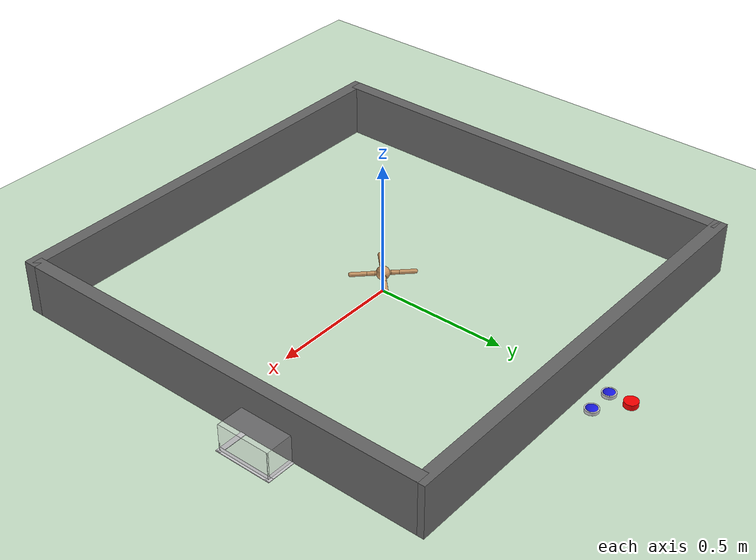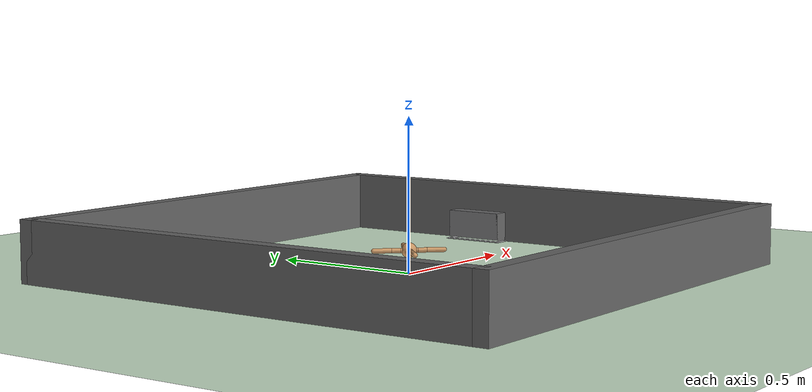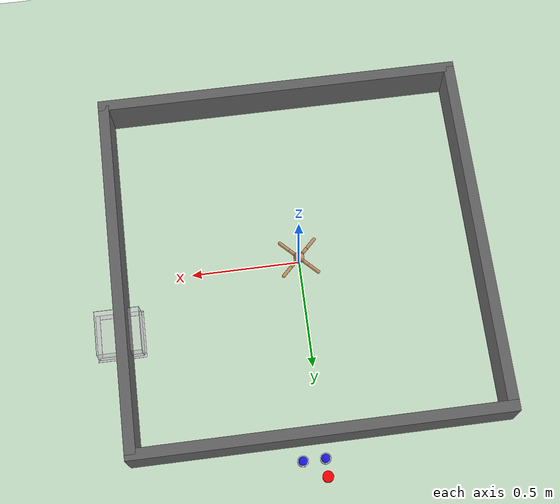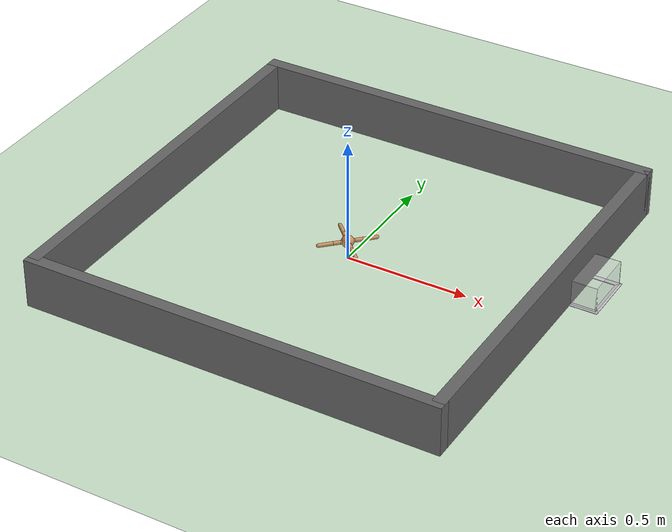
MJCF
<mujoco model="ant">
    <compiler angle="degree" coordinate="local" inertiafromgeom="true" texturedir="textures"/>
    <option integrator="RK4" timestep="0.02"/>
    <custom>
        <numeric data="0.0 0.0 0.055 0.1 0.0 0.0 0.0 0.0 0.1 0.0 -0.1 0.0 -0.1 0.0 0.1" name="init_qpos"/>
    </custom>
    <default>
        <joint armature="1" damping="1" limited="true"/>
        <geom conaffinity="1" condim="3" density="5.0" friction="1 0.5 0.5" margin="0.01" rgba="0.8 0.6 0.4 1"/>
    </default>
    <asset>
        <texture type="skybox" file="sky.png" gridsize="3 4" gridlayout=".U..LFRB.D.."/>
        <texture builtin="flat" height="1278" mark="cross" markrgb="1 1 1" name="texgeom" random="0.01"
                 rgb1="0.8 0.6 0.4" rgb2="0.8 0.6 0.4" type="cube" width="127"/>
        <texture builtin="flat" height="100" name="texplane" rgb1="0.0 0.25 0.5" type="2d" width="100"/>
        <material name="MatPlane" shininess="1" specular="1" texrepeat="60 60" texture="texplane"/>
        <material name="geom" texture="texgeom" texuniform="true"/>
    </asset>
    <worldbody>
        <include file="subgoal_viz.xml"/>
        <light cutoff="100" diffuse="1 1 1" dir="-0 0 -1.3" directional="true" exponent="1" pos="0 0 1.3"
               specular=".1 .1 .1"/>
        <geom conaffinity="1" condim="3" material="MatPlane" name="floor" pos="0 0 0" rgba="0.8 0.9 0.8 1"
              size="40 40 40" type="plane"/>
        <body name="torso" pos="0 0 0.075">
            <camera name="track" mode="trackcom" pos="0 -3 0.3" xyaxes="1 0 0 0 0 1"/>
            <geom name="torso_geom" pos="0 0 0" size="0.025" type="sphere"/>
            <joint armature="0" damping="0" limited="false" margin="0.01" name="root" pos="0 0 0" type="free"/>
            <body name="front_left_leg" pos="0 0 0">
                <geom fromto="0.0 0.0 0.0 0.02 0.02 0.0" name="aux_1_geom" size="0.008" type="capsule"/>
                <body name="up_leg1" pos="0.02 0.02 0">
                    <joint axis="0 0 1" name="hip_1" pos="0.0 0.0 0.0" range="-30 30" type="hinge"/>
                    <geom fromto="0.0 0.0 0.0 0.02 0.02 0.0" name="left_leg_geom" size="0.008" type="capsule"/>
                    <body name="low_leg1" pos="0.02 0.02 0">
                        <joint axis="-1 1 0" name="ankle_1" pos="0.0 0.0 0.0" range="30 70" type="hinge"/>
                        <geom fromto="0.0 0.0 0.0 0.04 0.04 0.0" name="left_ankle_geom" size="0.008" type="capsule"/>
                    </body>
                </body>
            </body>
            <body name="front_right_leg" pos="0 0 0">
                <geom fromto="0.0 0.0 0.0 -0.02 0.02 0.0" name="aux_2_geom" size="0.008" type="capsule"/>
                <body name="up_leg2" pos="-0.02 0.02 0">
                    <joint axis="0 0 1" name="hip_2" pos="0.0 0.0 0.0" range="-30 30" type="hinge"/>
                    <geom fromto="0.0 0.0 0.0 -0.02 0.02 0.0" name="right_leg_geom" size="0.008" type="capsule"/>
                    <body name="low_leg2" pos="-0.02 0.02 0">
                        <joint axis="1 1 0" name="ankle_2" pos="0.0 0.0 0.0" range="-70 -30" type="hinge"/>
                        <geom fromto="0.0 0.0 0.0 -0.04 0.04 0.0" name="right_ankle_geom" size="0.008" type="capsule"/>
                    </body>
                </body>
            </body>
            <body name="left_back_leg" pos="0 0 0">
                <geom fromto="0.0 0.0 0.0 -0.02 -0.02 0.0" name="aux_3_geom" size="0.008" type="capsule"/>
                <body name="up_leg3" pos="-0.02 -0.02 0">
                    <joint axis="0 0 1" name="hip_3" pos="0.0 0.0 0.0" range="-30 30" type="hinge"/>
                    <geom fromto="0.0 0.0 0.0 -0.02 -0.02 0.0" name="left_back_leg_geom" size="0.008" type="capsule"/>
                    <body name="low_leg3" pos="-0.02 -0.02 0">
                        <joint axis="-1 1 0" name="ankle_3" pos="0.0 0.0 0.0" range="-70 -30" type="hinge"/>
                        <geom fromto="0.0 0.0 0.0 -0.04 -0.04 0.0" name="left_back_ankle_geom" size="0.008"
                              type="capsule"/>
                    </body>
                </body>
            </body>
            <body name="right_back_leg" pos="0 0 0">
                <geom fromto="0.0 0.0 0.0 0.02 -0.02 0.0" name="aux_4_geom" size="0.008" type="capsule"/>
                <body name="up_leg4" pos="0.02 -0.02 0">
                    <joint axis="0 0 1" name="hip_4" pos="0.0 0.0 0.0" range="-30 30" type="hinge"/>
                    <geom fromto="0.0 0.0 0.0 0.02 -0.02 0.0" name="right_back_leg_geom" size="0.008" type="capsule"/>
                    <body name="low_leg4" pos="0.02 -0.02 0">
                        <joint axis="1 1 0" name="ankle_4" pos="0.0 0.0 0.0" range="30 70" type="hinge"/>
                        <geom fromto="0.0 0.0 0.0 0.04 -0.04 0.0" name="right_back_ankle_geom" size="0.008"
                              type="capsule"/>
                    </body>
                </body>
            </body>
        </body>

        <!-- Create Barriers -->
        <body name="east_wall" pos="0.825 0 0.1">
            <geom type="box" size="0.025 0.825 0.1" contype="1" conaffinity="1" rgba="0.4 0.4 0.4 1"/>
        </body>
        <body name="north_wall" pos="0 0.825 0.1">
            <geom type="box" size="0.85 0.025 0.1" contype="1" conaffinity="1" rgba="0.4 0.4 0.4 1"/>
        </body>
        <body name="west_wall" pos="-0.825 0 0.1">
            <geom type="box" size="0.025 0.825 0.1" contype="1" conaffinity="1" rgba="0.4 0.4 0.4 1"/>
        </body>
        <body name="south_wall" pos="0 -0.825 0.1">
            <geom type="box" size="0.85 0.025 0.1" contype="1" conaffinity="1" rgba="0.4 0.4 0.4 1"/>
        </body>

        <!-- cage -->
        <body name="cage" pos="0.85 0.25 0">
            <joint armature="0" damping="0" limited="false" margin="0.01" name="cage:joint" pos="0 0 0" type="free"/>
            <geom name="cage:botback" type="box" condim="1" pos="0 0.1 0.001" size="0.11 0.01 0.001" mass="1000000"
                  rgba="0.8 0.8 0.81 1"/>
            <geom name="cage:botfront" type="box" condim="1" pos="0 -0.1 0.001" size="0.11 0.01 0.001" mass="1000000"
                  rgba="0.8 0.8 0.81 1"/>
            <geom name="cage:botleft" type="box" condim="1" pos="-0.1 0 0.001" size="0.01 0.11 0.001" mass="1000000"
                  rgba="0.8 0.8 0.81 1"/>
            <geom name="cage:botright" type="box" condim="1" pos="0.1 0 0.001" size="0.01 0.11 0.001" mass="1000000"
                  rgba="0.8 0.8 0.81 1"/>
            <body name="cage:glass" pos="0 0.1 0.0021">
                <joint armature="0" damping="0" name="cage:glassjoint" type="hinge" axis="1 0 0" pos="0 0 0"
                       limited="false" range="-1.5708 0" margin="0.01"/>
                <geom name="cage:glassback" type="box" condim="1" pos="0 -0.02 0.02" size="0.06 0.02 0.02" mass="100"
                      rgba="0.8 0.8 0.81 0"/>
                <geom name="cage:glassfront" type="box" condim="1" pos="0 -0.18 0.02" size="0.06 0.02 0.02" mass="100"
                      rgba="0.8 0.8 0.81 0"/>
                <geom name="cage:glassleft" type="box" condim="1" pos="-0.08 -0.1 0.02" size="0.02 0.1 0.02" mass="100"
                      rgba="0.8 0.8 0.81 0"/>
                <geom name="cage:glassright" type="box" condim="1" pos="0.08 -0.1 0.02" size="0.02 0.1 0.02" mass="100"
                      rgba="0.8 0.8 0.81 0"/>
                <geom name="cage:glasstop" type="box" condim="1" pos="0 -0.1 0.07" size="0.1 0.1 0.03" mass="10"
                      rgba="0.8 0.8 0.81 0"/>
                <geom name="cage:glassback_visible" type="box" condim="3" pos="0 0 0.051" size="0.102 0.002 0.05"
                      mass="1000" rgba="0.8 0.8 0.81 0.3"/>
                <geom name="cage:glassfront_visible" type="box" condim="3" pos="0 -0.2 0.051" size="0.102 0.002 0.05"
                      mass="1000" rgba="0.8 0.8 0.81 0.3"/>
                <geom name="cage:glassleft_visible" type="box" condim="3" pos="-0.1 -0.1 0.051" size="0.002 0.102 0.05"
                      mass="1000" rgba="0.8 0.8 0.81 0.3"/>
                <geom name="cage:glassright_visible" type="box" condim="3" pos="0.1 -0.1 0.051" size="0.002 0.102 0.05"
                      mass="1000" rgba="0.8 0.8 0.81 0.3"/>
                <geom name="cage:glasstop_visible" type="box" condim="3" pos="0 -0.1 0.1" size="0.1 0.1 0.002"
                      mass="200" rgba="0.8 0.8 0.81 0.3"/>
            </body>
        </body>

        <!-- goal object-->
        <body name="object0" pos="0 1 0.025">
            <joint armature="0" damping="0" limited="false" margin="0.01" name="object0:joint" pos="0 0 0" type="free"/>
            <geom size="0.025 0.01" type="cylinder" condim="3" name="object0" rgba="1 0 0 1" mass="1000000"/>
        </body>

        <!-- buttons-->
        <body name="object1" pos="0 0.92 0.025">
            <joint armature="0" damping="0" limited="false" margin="0.01" name="object1:joint" pos="0 0 0" type="free"/>
            <geom size="0.022 0.022 0.008" type="ellipsoid" condim="3" name="object1" rgba="0.1 0.1 0.9 1"
                  mass="1000000"/>
            <geom size="0.025 0.006" type="cylinder" condim="3" name="frame1" rgba="0.8 0.8 0.81 1" mass="1000000"
                  pos="0 0 -0.003"/>
        </body>
        <body name="object2" pos="0.1  0.92 0.025">
            <joint armature="0" damping="0" limited="false" margin="0.01" name="object2:joint" pos="0 0 0" type="free"/>
            <geom size="0.022 0.022 0.008" type="ellipsoid" condim="3" name="object2" rgba="0.1 0.1 0.9 1"
                  mass="1000000"/>
            <geom size="0.025 0.006" type="cylinder" condim="3" name="frame2" rgba="0.8 0.8 0.81 1" mass="1000000"
                  pos="0 0 -0.003"/>
        </body>
    </worldbody>

    <actuator>
        <motor ctrllimited="true" ctrlrange="-1.0 1.0" joint="hip_4" gear="15"/>
        <motor ctrllimited="true" ctrlrange="-1.0 1.0" joint="ankle_4" gear="15"/>
        <motor ctrllimited="true" ctrlrange="-1.0 1.0" joint="hip_1" gear="15"/>
        <motor ctrllimited="true" ctrlrange="-1.0 1.0" joint="ankle_1" gear="15"/>
        <motor ctrllimited="true" ctrlrange="-1.0 1.0" joint="hip_2" gear="15"/>
        <motor ctrllimited="true" ctrlrange="-1.0 1.0" joint="ankle_2" gear="15"/>
        <motor ctrllimited="true" ctrlrange="-1.0 1.0" joint="hip_3" gear="15"/>
        <motor ctrllimited="true" ctrlrange="-1.0 1.0" joint="ankle_3" gear="15"/>
    </actuator>
</mujoco>

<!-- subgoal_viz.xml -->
<mujoco>
    <body>
        <site name="subgoal_sphere0" pos="0 0 7" size="0.025 0.025 0.025" rgba="1 0 0 0" type="sphere"/>
        <site name="subgoal_sphere1" pos="0 0 7" size="0.025 0.025 0.025" rgba="0 1 0 0" type="sphere"/>
        <site name="subgoal_sphere2" pos="0 0 7" size="0.025 0.025 0.025" rgba="0 0 1 0" type="sphere"/>
        <site name="subgoal_sphere3" pos="0 0 7" size="0.025 0.025 0.025" rgba="1 1 0 0" type="sphere"/>
        <site name="subgoal_sphere4" pos="0 0 7" size="0.025 0.025 0.025" rgba="1 0 1 0" type="sphere"/>
        <site name="subgoal_sphere5" pos="0 0 7" size="0.025 0.025 0.025" rgba="0 1 1 0" type="sphere"/>
        <site name="subgoal_sphere6" pos="0 0 7" size="0.025 0.025 0.025" rgba="1 0.5 0 0" type="sphere"/>
        <site name="subgoal_sphere7" pos="0 0 7" size="0.025 0.025 0.025" rgba="1 0 0.5 0" type="sphere"/>
        <site name="subgoal_sphere8" pos="0 0 7" size="0.025 0.025 0.025" rgba="0.5 1 0.5 0" type="sphere"/>
        <site name="subgoal_sphere9" pos="0 0 7" size="0.025 0.025 0.025" rgba="0 0.5 1 0" type="sphere"/>

        <site name="subgoal_box0" pos="0 0 7" size="0.025 0.025 0.025" rgba="1 0 0 0" type="box"/>
        <site name="subgoal_box1" pos="0 0 7" size="0.025 0.025 0.025" rgba="0 1 0 0" type="box"/>
        <site name="subgoal_box2" pos="0 0 7" size="0.025 0.025 0.025" rgba="0 0 1 0" type="box"/>
        <site name="subgoal_box3" pos="0 0 7" size="0.025 0.025 0.025" rgba="1 1 0 0" type="box"/>
        <site name="subgoal_box4" pos="0 0 7" size="0.025 0.025 0.025" rgba="1 0 1 0" type="box"/>
        <site name="subgoal_box5" pos="0 0 7" size="0.025 0.025 0.025" rgba="0 1 1 0" type="box"/>
        <site name="subgoal_box6" pos="0 0 7" size="0.025 0.025 0.025" rgba="1 0.5 0 0" type="box"/>
        <site name="subgoal_box7" pos="0 0 7" size="0.025 0.025 0.025" rgba="1 0 0.5 0" type="box"/>
        <site name="subgoal_box8" pos="0 0 7" size="0.025 0.025 0.025" rgba="0.5 1 0.5 0" type="box"/>
        <site name="subgoal_box9" pos="0 0 7" size="0.025 0.025 0.025" rgba="0 0.5 1 0" type="box"/>

        <site name="subgoal_cylinder0" pos="0 0 7" size="0.025 0.025 0.025" rgba="1 0 0 0" type="cylinder"/>
        <site name="subgoal_cylinder1" pos="0 0 7" size="0.025 0.025 0.025" rgba="0 1 0 0" type="cylinder"/>
        <site name="subgoal_cylinder2" pos="0 0 7" size="0.025 0.025 0.025" rgba="0 0 1 0" type="cylinder"/>
        <site name="subgoal_cylinder3" pos="0 0 7" size="0.025 0.025 0.025" rgba="1 1 0 0" type="cylinder"/>
        <site name="subgoal_cylinder4" pos="0 0 7" size="0.025 0.025 0.025" rgba="1 0 1 0" type="cylinder"/>
        <site name="subgoal_cylinder5" pos="0 0 7" size="0.025 0.025 0.025" rgba="0 1 1 0" type="cylinder"/>
        <site name="subgoal_cylinder6" pos="0 0 7" size="0.025 0.025 0.025" rgba="1 0.5 0 0" type="cylinder"/>
        <site name="subgoal_cylinder7" pos="0 0 7" size="0.025 0.025 0.025" rgba="1 0 0.5 0" type="cylinder"/>
        <site name="subgoal_cylinder8" pos="0 0 7" size="0.025 0.025 0.025" rgba="0.5 1 0.5 0" type="cylinder"/>
        <site name="subgoal_cylinder9" pos="0 0 7" size="0.025 0.025 0.025" rgba="0 0.5 1 0" type="cylinder"/>
    </body>
</mujoco>
